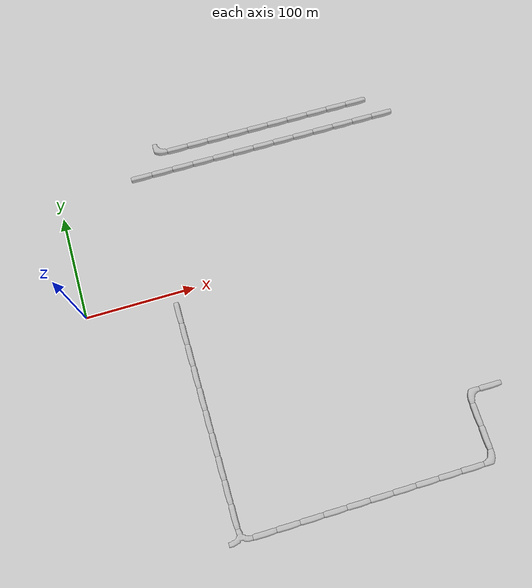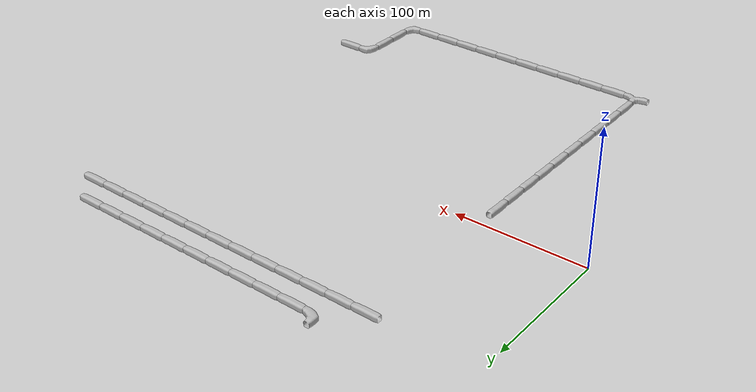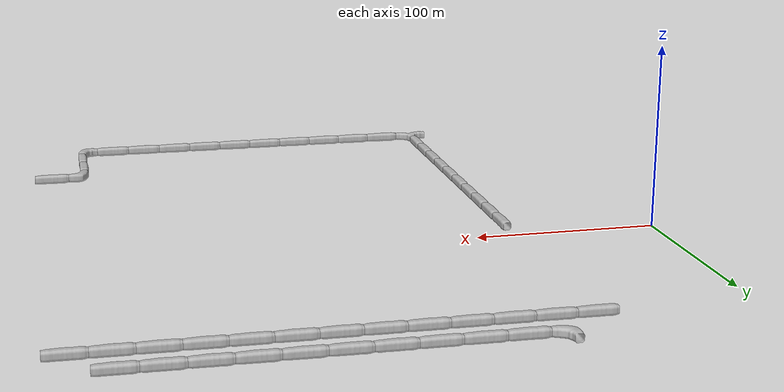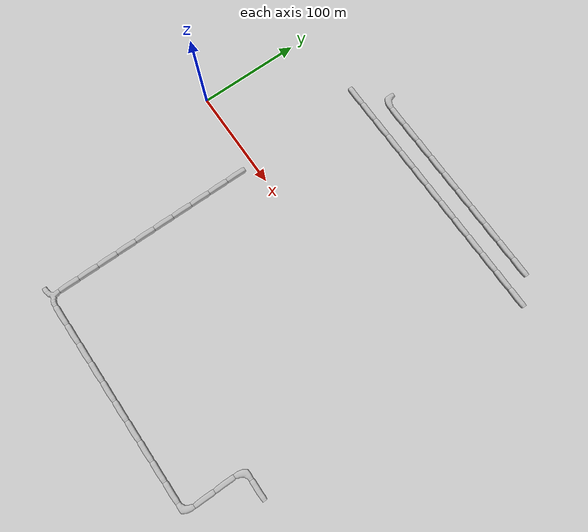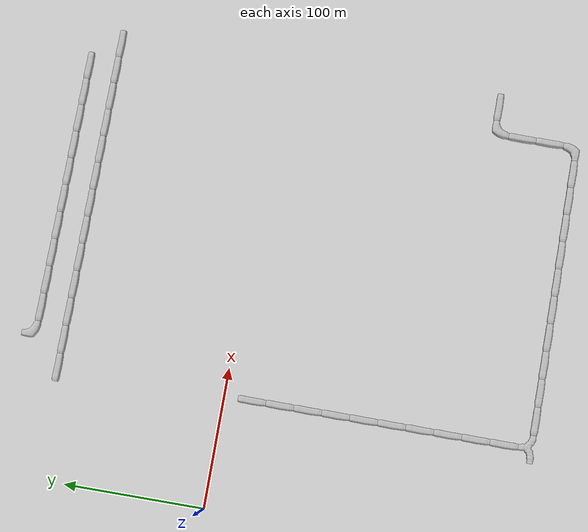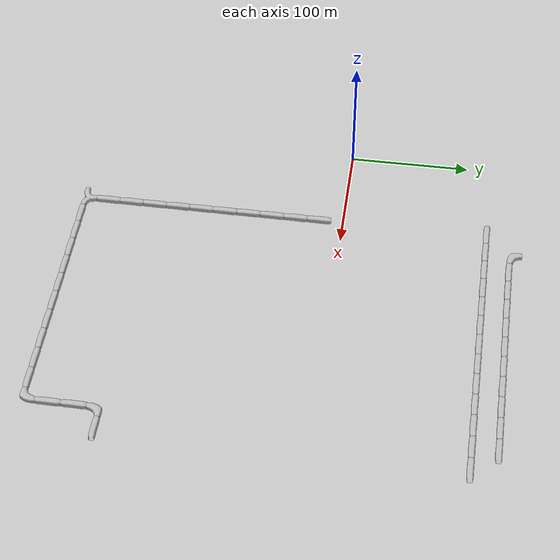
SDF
<sdf version="1.6">
 <world name="cave_16000_2">
  <include>
   <static>true</static>
   <name>cave_4_-1</name>
   <pose>80 -20 0 0 0 0.0</pose>
   <uri>model://cave_straight_20m</uri>
  </include>
  <include>
   <static>true</static>
   <name>cave_4_-2</name>
   <pose>80 -40 0 0 0 0.0</pose>
   <uri>model://cave_straight_20m</uri>
  </include>
  <include>
   <static>true</static>
   <name>cave_4_-3</name>
   <pose>80 -60 0 0 0 0.0</pose>
   <uri>model://cave_straight_20m</uri>
  </include>
  <include>
   <static>true</static>
   <name>cave_4_-4</name>
   <pose>80 -80 0 0 0 0.0</pose>
   <uri>model://cave_straight_20m</uri>
  </include>
  <include>
   <static>true</static>
   <name>cave_4_-5</name>
   <pose>80 -100 0 0 0 0.0</pose>
   <uri>model://cave_straight_20m</uri>
  </include>
  <include>
   <static>true</static>
   <name>cave_4_-6</name>
   <pose>80 -120 0 0 0 0.0</pose>
   <uri>model://cave_straight_20m</uri>
  </include>
  <include>
   <static>true</static>
   <name>cave_4_-7</name>
   <pose>80 -140 0 0 0 0.0</pose>
   <uri>model://cave_straight_20m</uri>
  </include>
  <include>
   <static>true</static>
   <name>cave_4_-8</name>
   <pose>80 -160 0 0 0 0.0</pose>
   <uri>model://cave_straight_20m</uri>
  </include>
  <include>
   <static>true</static>
   <name>cave_4_-9</name>
   <pose>80 -180 0 0 0 0.0</pose>
   <uri>model://cave_straight_20m</uri>
  </include>
  <include>
   <static>true</static>
   <name>cave_4_-10</name>
   <pose>80 -200 0 0 0 0.0</pose>
   <uri>model://cave_straight_20m</uri>
  </include>
  <include>
   <static>true</static>
   <name>cave_4_-11</name>
   <pose>80 -220 0 0 0 0.0</pose>
   <uri>model://cave_3way_20m</uri>
  </include>
  <include>
   <static>true</static>
   <name>cave_5_-11</name>
   <pose>100 -220 0 0 0 1.5707963267948966</pose>
   <uri>model://cave_straight_20m</uri>
  </include>
  <include>
   <static>true</static>
   <name>cave_6_-11</name>
   <pose>120 -220 0 0 0 1.5707963267948966</pose>
   <uri>model://cave_straight_20m</uri>
  </include>
  <include>
   <static>true</static>
   <name>cave_7_-11</name>
   <pose>140 -220 0 0 0 1.5707963267948966</pose>
   <uri>model://cave_straight_20m</uri>
  </include>
  <include>
   <static>true</static>
   <name>cave_8_-11</name>
   <pose>160 -220 0 0 0 1.5707963267948966</pose>
   <uri>model://cave_straight_20m</uri>
  </include>
  <include>
   <static>true</static>
   <name>cave_9_-11</name>
   <pose>180 -220 0 0 0 1.5707963267948966</pose>
   <uri>model://cave_straight_20m</uri>
  </include>
  <include>
   <static>true</static>
   <name>cave_10_-11</name>
   <pose>200 -220 0 0 0 1.5707963267948966</pose>
   <uri>model://cave_straight_20m</uri>
  </include>
  <include>
   <static>true</static>
   <name>cave_11_-11</name>
   <pose>220 -220 0 0 0 1.5707963267948966</pose>
   <uri>model://cave_straight_20m</uri>
  </include>
  <include>
   <static>true</static>
   <name>cave_12_-11</name>
   <pose>240 -220 0 0 0 1.5707963267948966</pose>
   <uri>model://cave_straight_20m</uri>
  </include>
  <include>
   <static>true</static>
   <name>cave_13_-11</name>
   <pose>260 -220 0 0 0 1.5707963267948966</pose>
   <uri>model://cave_straight_20m</uri>
  </include>
  <include>
   <static>true</static>
   <name>cave_14_-11</name>
   <pose>280 -220 0 0 0 1.5707963267948966</pose>
   <uri>model://cave_straight_20m</uri>
  </include>
  <include>
   <static>true</static>
   <name>cave_15_-11</name>
   <pose>300 -220 0 0 0 1.5707963267948966</pose>
   <uri>model://cave_L_20m</uri>
  </include>
  <include>
   <static>true</static>
   <name>cave_15_-10</name>
   <pose>300 -200 0 0 0 0.0</pose>
   <uri>model://cave_straight_20m</uri>
  </include>
  <include>
   <static>true</static>
   <name>cave_15_-9</name>
   <pose>300 -180 0 0 0 0.0</pose>
   <uri>model://cave_straight_20m</uri>
  </include>
  <include>
   <static>true</static>
   <name>cave_15_-8</name>
   <pose>300 -160 0 0 0 -1.5707963267948966</pose>
   <uri>model://cave_L_20m</uri>
  </include>
  <include>
   <static>true</static>
   <name>cave_16_-8</name>
   <pose>320 -160 0 0 0 1.5707963267948966</pose>
   <uri>model://cave_straight_20m</uri>
  </include>
  <include>
   <static>true</static>
   <name>cave_4_6</name>
   <pose>80 120 0 0 0 1.5707963267948966</pose>
   <uri>model://cave_straight_20m</uri>
  </include>
  <include>
   <static>true</static>
   <name>cave_5_6</name>
   <pose>100 120 0 0 0 1.5707963267948966</pose>
   <uri>model://cave_straight_20m</uri>
  </include>
  <include>
   <static>true</static>
   <name>cave_6_6</name>
   <pose>120 120 0 0 0 1.5707963267948966</pose>
   <uri>model://cave_straight_20m</uri>
  </include>
  <include>
   <static>true</static>
   <name>cave_7_6</name>
   <pose>140 120 0 0 0 1.5707963267948966</pose>
   <uri>model://cave_straight_20m</uri>
  </include>
  <include>
   <static>true</static>
   <name>cave_8_6</name>
   <pose>160 120 0 0 0 1.5707963267948966</pose>
   <uri>model://cave_straight_20m</uri>
  </include>
  <include>
   <static>true</static>
   <name>cave_9_6</name>
   <pose>180 120 0 0 0 1.5707963267948966</pose>
   <uri>model://cave_straight_20m</uri>
  </include>
  <include>
   <static>true</static>
   <name>cave_10_6</name>
   <pose>200 120 0 0 0 1.5707963267948966</pose>
   <uri>model://cave_straight_20m</uri>
  </include>
  <include>
   <static>true</static>
   <name>cave_11_6</name>
   <pose>220 120 0 0 0 1.5707963267948966</pose>
   <uri>model://cave_straight_20m</uri>
  </include>
  <include>
   <static>true</static>
   <name>cave_12_6</name>
   <pose>240 120 0 0 0 1.5707963267948966</pose>
   <uri>model://cave_straight_20m</uri>
  </include>
  <include>
   <static>true</static>
   <name>cave_13_6</name>
   <pose>260 120 0 0 0 1.5707963267948966</pose>
   <uri>model://cave_straight_20m</uri>
  </include>
  <include>
   <static>true</static>
   <name>cave_14_6</name>
   <pose>280 120 0 0 0 1.5707963267948966</pose>
   <uri>model://cave_straight_20m</uri>
  </include>
  <include>
   <static>true</static>
   <name>cave_15_6</name>
   <pose>300 120 0 0 0 1.5707963267948966</pose>
   <uri>model://cave_straight_20m</uri>
  </include>
  <include>
   <static>true</static>
   <name>cave_16_6</name>
   <pose>320 120 0 0 0 1.5707963267948966</pose>
   <uri>model://cave_straight_20m</uri>
  </include>
  <include>
   <static>true</static>
   <name>cave_15_7</name>
   <pose>300 140 0 0 0 1.5707963267948966</pose>
   <uri>model://cave_straight_20m</uri>
  </include>
  <include>
   <static>true</static>
   <name>cave_14_7</name>
   <pose>280 140 0 0 0 1.5707963267948966</pose>
   <uri>model://cave_straight_20m</uri>
  </include>
  <include>
   <static>true</static>
   <name>cave_13_7</name>
   <pose>260 140 0 0 0 1.5707963267948966</pose>
   <uri>model://cave_straight_20m</uri>
  </include>
  <include>
   <static>true</static>
   <name>cave_12_7</name>
   <pose>240 140 0 0 0 1.5707963267948966</pose>
   <uri>model://cave_straight_20m</uri>
  </include>
  <include>
   <static>true</static>
   <name>cave_11_7</name>
   <pose>220 140 0 0 0 1.5707963267948966</pose>
   <uri>model://cave_straight_20m</uri>
  </include>
  <include>
   <static>true</static>
   <name>cave_10_7</name>
   <pose>200 140 0 0 0 1.5707963267948966</pose>
   <uri>model://cave_straight_20m</uri>
  </include>
  <include>
   <static>true</static>
   <name>cave_9_7</name>
   <pose>180 140 0 0 0 1.5707963267948966</pose>
   <uri>model://cave_straight_20m</uri>
  </include>
  <include>
   <static>true</static>
   <name>cave_8_7</name>
   <pose>160 140 0 0 0 1.5707963267948966</pose>
   <uri>model://cave_straight_20m</uri>
  </include>
  <include>
   <static>true</static>
   <name>cave_7_7</name>
   <pose>140 140 0 0 0 1.5707963267948966</pose>
   <uri>model://cave_straight_20m</uri>
  </include>
  <include>
   <static>true</static>
   <name>cave_6_7</name>
   <pose>120 140 0 0 0 1.5707963267948966</pose>
   <uri>model://cave_straight_20m</uri>
  </include>
  <include>
   <static>true</static>
   <name>cave_5_7</name>
   <pose>100 140 0 0 0 0.0</pose>
   <uri>model://cave_L_20m</uri>
  </include>
 </world>
</sdf>
